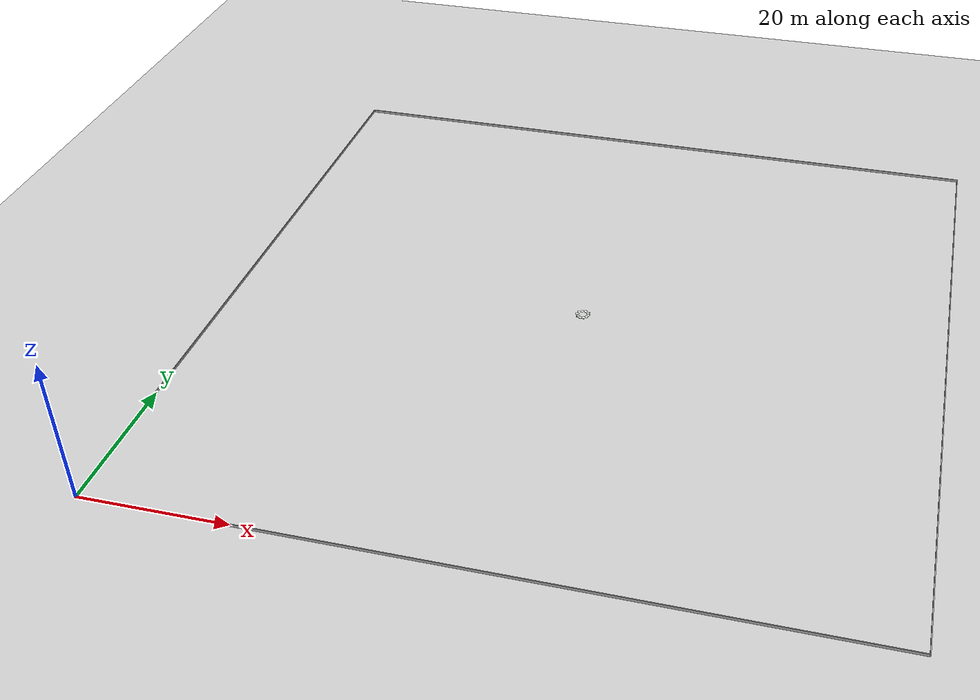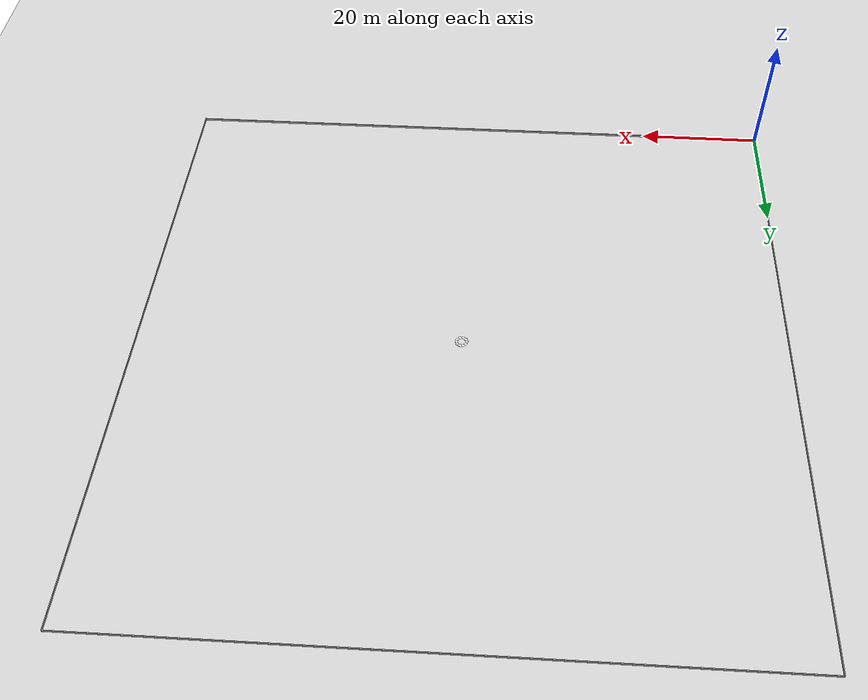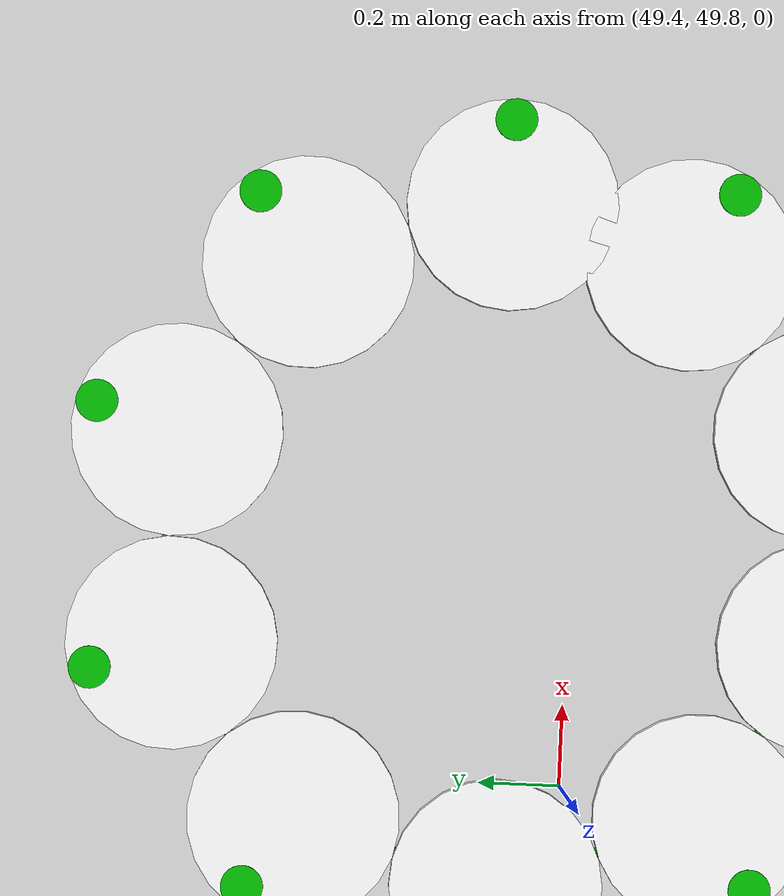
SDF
<sdf version="1.6">
 <world name="default">
  <include><uri>model://ground_plane</uri></include>
  <include><uri>model://sun</uri></include>
  <include><name>m_4wrobot1</name><pose>50.8 50.0 0.005 0 0 0</pose><uri>model://m_4wrobot</uri></include>
  <include>
   <name>m_4wrobot2</name>
   <pose>50.64375 50.47495887979908 0.005 0 0 0.6356474078557615</pose>
   <uri>model://m_4wrobot</uri>
  </include>
  <include>
   <name>m_4wrobot3</name>
   <pose>50.23603515625 50.76438694717665 0.005 0 0 1.271294815711523</pose>
   <uri>model://m_4wrobot</uri>
  </include>
  <include>
   <name>m_4wrobot4</name>
   <pose>49.73611907958984 50.75522636331334 0.005 0 0 1.9069422235672844</pose>
   <uri>model://m_4wrobot</uri>
  </include>
  <include>
   <name>m_4wrobot5</name>
   <pose>49.3392814874649 50.451055481280754 0.005 0 0 2.542589631423046</pose>
   <uri>model://m_4wrobot</uri>
  </include>
  <include>
   <name>m_4wrobot6</name>
   <pose>49.200537064298985 49.970691051872876 0.005 0 0 3.178237039278807</pose>
   <uri>model://m_4wrobot</uri>
  </include>
  <include>
   <name>m_4wrobot7</name>
   <pose>49.374082850391275 49.50177543032716 0.005 0 0 3.8138844471345683</pose>
   <uri>model://m_4wrobot</uri>
  </include>
  <include>
   <name>m_4wrobot8</name>
   <pose>49.79212752304947 49.22747878130989 0.005 0 0 4.4495318549903295</pose>
   <uri>model://m_4wrobot</uri>
  </include>
  <include>
   <name>m_4wrobot9</name>
   <pose>50.29137238201647 49.25494823334345 0.005 0 0 5.085179262846091</pose>
   <uri>model://m_4wrobot</uri>
  </include>
  <include>
   <name>m_4wrobot10</name>
   <pose>50.67679990425828 49.573453531727225 0.005 0 0 5.720826670701852</pose>
   <uri>model://m_4wrobot</uri>
  </include>
  <model name="boundary1">
   <static>1</static>
   <pose>50 50 0 0 0 0</pose>
   <link name="link">
    <collision name="collision1">
     <pose>-50.05 0 0.0 0 0 0</pose>
     <geometry><box><size>0.1 100.1 0.5</size></box></geometry>
    </collision>
    <visual name="visual1">
     <pose>-50.05 0 0.0 0 0 0</pose>
     <geometry><box><size>0.1 100.1 0.5</size></box></geometry>
    </visual>
    <collision name="collision2">
     <pose>50.05 0 0.0 0 0 0</pose>
     <geometry><box><size>0.1 100.1 0.5</size></box></geometry>
    </collision>
    <visual name="visual2">
     <pose>50.05 0 0.0 0 0 0</pose>
     <geometry><box><size>0.1 100.1 0.5</size></box></geometry>
    </visual>
    <collision name="collision3">
     <pose>0 -50 0.0 0 0 0</pose>
     <geometry><box><size>100 0.1 0.5</size></box></geometry>
    </collision>
    <visual name="visual3">
     <pose>0 -50 0.0 0 0 0</pose>
     <geometry><box><size>100 0.1 0.5</size></box></geometry>
    </visual>
    <collision name="collision4">
     <pose>0 50 0.0 0 0 0</pose>
     <geometry><box><size>100 0.1 0.5</size></box></geometry>
    </collision>
    <visual name="visual4">
     <pose>0 50 0.0 0 0 0</pose>
     <geometry><box><size>100 0.1 0.5</size></box></geometry>
    </visual>
   </link>
  </model>
  <plugin name="wp_swarm1" filename="libwp_swarm1.so"/>
 </world>
</sdf>

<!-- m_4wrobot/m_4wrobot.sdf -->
<!--Prefer Using this version.-->

<!--scale -->
<!--chassis length -->
<!--chassis radius -->
<!--wheel radius -->
<!--wheel length -->
<!--friction coefficient on wheels range from 0 to 1 -->
<!--slip coefficient range from 0 to 1 -->
<!--chassis mass-->
<!--mass of revolute wheels-->
<!--mass of caster wheels-->

<?xml version='1.0'?>
<sdf version='1.6'>
  <model name='m_4wrobot'>
	  <static>false</static>
	  <pose>0 0 0 0 0 0</pose>
	  <link name = 'chassis'>
		  <pose>0 0 0.126 0 0 0</pose>
		  <inertial>
			<mass>1</mass>
			<inertia>
				<ixx>0.015633333333333332</ixx>
				<ixy>0</ixy>
				<ixz>0</ixz>
				<iyy>0.015633333333333332</iyy>
				<iyz>0</iyz>
				<izz>0.015633333333333332</izz>
			</inertia>
		 </inertial>
		  <visual name='visual'>
			  <geometry>
				  <cylinder>
					  <radius>0.25</radius>
					  <length>0.01</length>
				  </cylinder>
			  </geometry>
			  <material>
				<ambient>0.95 0.95 0.95 01</ambient>
				<diffuse>0.95 0.95 0.95 01</diffuse>
				<specular>0 0 0 0</specular>
				<emissive>0 0 0 0</emissive>
			  </material>
		  </visual>
		  <visual name = 'visual1'>
			  <pose>0.2 0 0 0 0 0</pose>
			  <geometry>
				  <cylinder>
					  <radius>0.05</radius>
					  <length>0.0121</length>
				  </cylinder>
			  </geometry>
			  <material>
				<ambient>0 0.7 0 01</ambient>
				<diffuse>0 0.7 0 01</diffuse>
				<specular>0 0 0 0</specular>
				<emissive>0 0 0 0</emissive>
			  </material>
		  </visual>
		  <collision name='collision'>
			  <geometry>
				  <cylinder>
					  <radius>0.25</radius>
					  <length>0.0605</length><!--2*wr-->
				  </cylinder>
			  </geometry>
		  </collision>
		  <sensor name='chassis_contact' type='contact'>
			  <contact>
				  <collision>collision</collision>
			  </contact>
			  <update_rate>1</update_rate>
			  <always_on>true</always_on>
			  <visualize>false</visualize>
		  </sensor>
	  </link>
	  <link name = 'wheelL'>
		  <pose>0 0.2 0.0605 0 1.5705 1.5705</pose>
	    <inertial>
			<mass>1</mass>
			<inertia>
				<ixx>0.0012200833333333332</ixx>
				<ixy>0</ixy>
				<ixz>0</ixz>
				<iyy>0.0012200833333333332</iyy>
				<iyz>0</iyz>
				<izz>0.0012200833333333332</izz>
			</inertia>
		 </inertial>
		  <visual name = 'visual'>
			  <geometry>
				  <cylinder>
					  <radius>0.0605</radius>
					  <length>0.0605</length>
				  </cylinder>
			  </geometry>
			  <material>
				<ambient>0.2 0.2 0.2 01</ambient>
				<diffuse>0.2 0.2 0.2 01</diffuse>
				<specular>0 0 0 0</specular>
				<emissive>0 0 0 0</emissive>
			  </material>
		  </visual>
		  <visual name = 'visual1'>
			  <pose>0 0.05 0.03025 0 0 0</pose>
			  <geometry>
				  <cylinder>
					  <radius>0.010083333333333333</radius>
					  <length>0.03025</length>
				  </cylinder>
			  </geometry>
			  <material>
				<ambient>0 0.7 0 01</ambient>
				<diffuse>0 0.7 0 01</diffuse>
				<specular>0 0 0 0</specular>
				<emissive>0 0 0 0</emissive>
			  </material>
		  </visual>

		  <collision name = 'collision'>
			  <geometry>
				  <cylinder>
					  <radius>0.0605</radius>
					  <length>0.0605</length>
				  </cylinder>
			  </geometry>
		  </collision>
      </link>

      <joint type='revolute' name='L_joint'>
		  <pose>0 0 -0.03025 0 0 0</pose>
		  <child>wheelL</child>
		  <parent>chassis</parent>
		  <axis>
			  <xyz>0 0 1</xyz>
		  </axis>
		  <physics>
			  <ode>
				  <max_force>0</max_force>
			  </ode>
		  </physics>
      </joint>
      <link name = 'wheelR'>
		  <pose>0 -0.2 0.0605 0 1.5705 1.5705</pose>
		  <inertial>
		    <mass>1</mass>
			<inertia>
				<ixx>0.0012200833333333332</ixx>
				<ixy>0</ixy>
				<ixz>0</ixz>
				<iyy>0.0012200833333333332</iyy>
				<iyz>0</iyz>
				<izz>0.0012200833333333332</izz>
			</inertia>
		 </inertial>
		  <visual name = 'visual'>
			  <geometry>
				  <cylinder>
					  <radius>0.0605</radius>
					  <length>0.0605</length>
				  </cylinder>
			  </geometry>
			  <material>
				<ambient>0.2 0.2 0.2 01</ambient>
				<diffuse>0.2 0.2 0.2 01</diffuse>
				<specular>0 0 0 0</specular>
				<emissive>0 0 0 0</emissive>
			  </material>
		  </visual>
		  <visual name = 'visual1'>
			  <pose>0 0.05 -0.03025 0 0 0</pose>
			  <geometry>
				  <cylinder>
					  <radius>0.010083333333333333</radius>
					  <length>0.03025</length>
				  </cylinder>
			  </geometry>
			  <material>
				<ambient>0 0.7 0 01</ambient>
				<diffuse>0 0.7 0 01</diffuse>
				<specular>0 0 0 0</specular>
				<emissive>0 0 0 0</emissive>
			  </material>
		  </visual>
		  <collision name = 'collision'>
			  <geometry>
				  <cylinder>
					  <radius>0.0605</radius>
					  <length>0.0605</length>
				  </cylinder>
			  </geometry>
		  </collision>
      </link>
      <joint type='revolute' name='R_joint'>
		  <pose>0 0 0.03025 0 0 0</pose>
		  <child>wheelR</child>
		  <parent>chassis</parent>
		  <axis>
			  <xyz>0 0 1</xyz>
		  </axis>
		  <physics>
			  <ode>
				  <max_force>0</max_force>
			  </ode>
		  </physics>
      </joint>
      <link name = 'wheelB'>
		  <pose>-0.15 0 0.0605 0 1.5705 1.5705</pose>
		  <inertial>
			<mass>0.1</mass>
			<inertia>
				<ixx>0.00014641000000000003</ixx>
				<ixy>0</ixy>
				<ixz>0</ixz>
				<iyy>0.00014641000000000003</iyy>
				<iyz>0</iyz>
				<izz>0.00014641000000000003</izz>
			</inertia>
		 </inertial>
		 <visual name = 'visual1'>
			  <pose>0.0605 0 0 0 0 0</pose>
			  <geometry>
				  <sphere>
					  <radius>0.00605</radius>
				  </sphere>
			  </geometry>
			  <material>
				<ambient>0 0 0.7 01</ambient>
				<diffuse>0 0 0.7 01</diffuse>
				<specular>0 0 0 0</specular>
				<emissive>0 0 0 0</emissive>
			  </material>
		  </visual>
		  <visual name = 'visual2'>
			  <pose>0 0.0605 0 0 0 0</pose>
			  <geometry>
				  <sphere>
					  <radius>0.00605</radius>
				  </sphere>
			  </geometry>
			  <material>
				<ambient>0 0 0.7 01</ambient>
				<diffuse>0 0 0.7 01</diffuse>
				<specular>0 0 0 0</specular>
				<emissive>0 0 0 0</emissive>
			  </material>
		  </visual>
		  <visual name = 'visual3'>
			  <pose>0 0 0.0605 0 0 0</pose>
			  <geometry>
				  <sphere>
					  <radius>0.00605</radius>
				  </sphere>
			  </geometry>
			  <material>
				<ambient>0 0 0.7 01</ambient>
				<diffuse>0 0 0.7 01</diffuse>
				<specular>0 0 0 0</specular>
				<emissive>0 0 0 0</emissive>
			  </material>
		  </visual>
		  <visual name = 'visual4'>
			  <pose>-0.0605 0 0 0 0 0</pose>
			  <geometry>
				  <sphere>
					  <radius>-0.00605</radius>
				  </sphere>
			  </geometry>
			  <material>
				<ambient>0 0 0.7 01</ambient>
				<diffuse>0 0 0.7 01</diffuse>
				<specular>0 0 0 0</specular>
				<emissive>0 0 0 0</emissive>
			  </material>
		  </visual>
		  <visual name = 'visual5'>
			  <pose>0 -0.0605 0 0 0 0</pose>
			  <geometry>
				  <sphere>
					  <radius>0.00605</radius>
				  </sphere>
			  </geometry>
			  <material>
				<ambient>0 0 0.7 01</ambient>
				<diffuse>0 0 0.7 01</diffuse>
				<specular>0 0 0 0</specular>
				<emissive>0 0 0 0</emissive>
			  </material>
		  </visual>
		  <visual name = 'visual6'>
			  <pose>0 0 -0.0605 0 0 0</pose>
			  <geometry>
				  <sphere>
					  <radius>0.00605</radius>
				  </sphere>
			  </geometry>
			  <material>
				<ambient>0 0 0.7 01</ambient>
				<diffuse>0 0 0.7 01</diffuse>
				<specular>0 0 0 0</specular>
				<emissive>0 0 0 0</emissive>
			  </material>
		  </visual>
		  <visual name = 'visual'>
			  <geometry>
				  <sphere>
					  <radius>0.0605</radius>
				  </sphere>
			  </geometry>
			  <material>
				<ambient>0.2 0.2 0.2 01</ambient>
				<diffuse>0.2 0.2 0.2 01</diffuse>
				<specular>0 0 0 0</specular>
				<emissive>0 0 0 0</emissive>
			  </material>
		  </visual>
		  <collision name = 'collision'>
			  <geometry>
				  <sphere>
					  <radius>0.0605</radius>
				  </sphere>
			  </geometry>
		  </collision>
      </link>
      <joint type='ball' name='B_joint'>
		  <child>wheelB</child>
		  <parent>chassis</parent>
      </joint>

      <link name = 'wheelF'>
		  <pose>0.15 0 0.0605 0 1.5705 1.5705</pose>
		  <inertial>
			<mass>0.1</mass>
			<inertia>
				<ixx>0.00014641000000000003</ixx>
				<ixy>0</ixy>
				<ixz>0</ixz>
				<iyy>0.00014641000000000003</iyy>
				<iyz>0</iyz>
				<izz>0.00014641000000000003</izz>
			</inertia>
		 </inertial>
		 <visual name = 'visual1'>
			  <pose>0.0605 0 0 0 0 0</pose>
			  <geometry>
				  <sphere>
					  <radius>0.00605</radius>
				  </sphere>
			  </geometry>
			  <material>
				<ambient>0 0 0.7 01</ambient>
				<diffuse>0 0 0.7 01</diffuse>
				<specular>0 0 0 0</specular>
				<emissive>0 0 0 0</emissive>
			  </material>
		  </visual>
		  <visual name = 'visual2'>
			  <pose>0 0.0605 0 0 0 0</pose>
			  <geometry>
				  <sphere>
					  <radius>0.00605</radius>
				  </sphere>
			  </geometry>
			  <material>
				<ambient>0 0 0.7 01</ambient>
				<diffuse>0 0 0.7 01</diffuse>
				<specular>0 0 0 0</specular>
				<emissive>0 0 0 0</emissive>
			  </material>
		  </visual>
		  <visual name = 'visual3'>
			  <pose>0 0 0.0605 0 0 0</pose>
			  <geometry>
				  <sphere>
					  <radius>0.00605</radius>
				  </sphere>
			  </geometry>
			  <material>
				<ambient>0 0 0.7 01</ambient>
				<diffuse>0 0 0.7 01</diffuse>
				<specular>0 0 0 0</specular>
				<emissive>0 0 0 0</emissive>
			  </material>
		  </visual>
		  <visual name = 'visual4'>
			  <pose>-0.0605 0 0 0 0 0</pose>
			  <geometry>
				  <sphere>
					  <radius>-0.00605</radius>
				  </sphere>
			  </geometry>
			  <material>
				<ambient>0 0 0.7 01</ambient>
				<diffuse>0 0 0.7 01</diffuse>
				<specular>0 0 0 0</specular>
				<emissive>0 0 0 0</emissive>
			  </material>
		  </visual>
		  <visual name = 'visual5'>
			  <pose>0 -0.0605 0 0 0 0</pose>
			  <geometry>
				  <sphere>
					  <radius>0.00605</radius>
				  </sphere>
			  </geometry>
			  <material>
				<ambient>0 0 0.7 01</ambient>
				<diffuse>0 0 0.7 01</diffuse>
				<specular>0 0 0 0</specular>
				<emissive>0 0 0 0</emissive>
			  </material>
		  </visual>
		  <visual name = 'visual6'>
			  <pose>0 0 -0.0605 0 0 0</pose>
			  <geometry>
				  <sphere>
					  <radius>0.00605</radius>
				  </sphere>
			  </geometry>
			  <material>
				<ambient>0 0 0.7 01</ambient>
				<diffuse>0 0 0.7 01</diffuse>
				<specular>0 0 0 0</specular>
				<emissive>0 0 0 0</emissive>
			  </material>
		  </visual>
		  <visual name = 'visual'>
			  <geometry>
				  <sphere>
					  <radius>0.0605</radius>
				  </sphere>
			  </geometry>
			  <material>
				<ambient>0.2 0.2 0.2 01</ambient>
				<diffuse>0.2 0.2 0.2 01</diffuse>
				<specular>0 0 0 0</specular>
				<emissive>0 0 0 0</emissive>
			  </material>
		  </visual>
		  <collision name = 'collision'>
			  <geometry>
				  <sphere>
					  <radius>0.0605</radius>
				  </sphere>
			  </geometry>
		  </collision>
      </link>

      <joint type='ball' name='F_joint'>
		  <child>wheelF</child>
		  <parent>chassis</parent>
      </joint>

	 <plugin name='libmp_swarm1' filename='libmp_swarm1.so'/>
  </model>
 </sdf>
